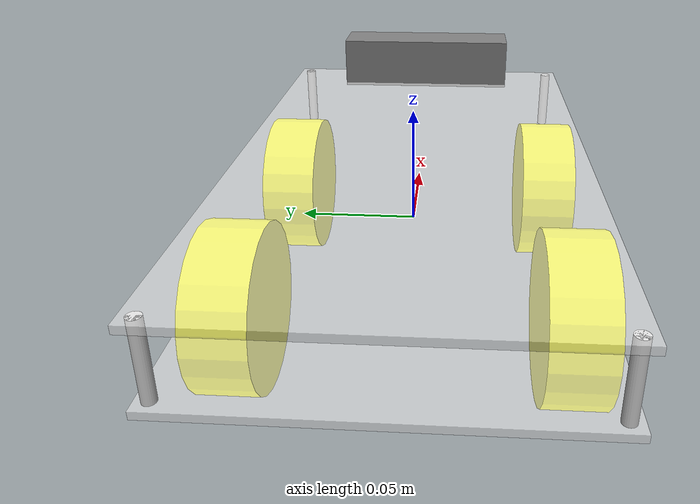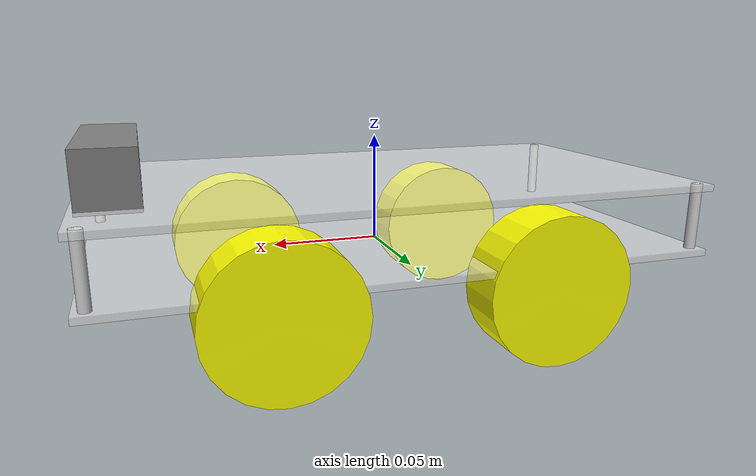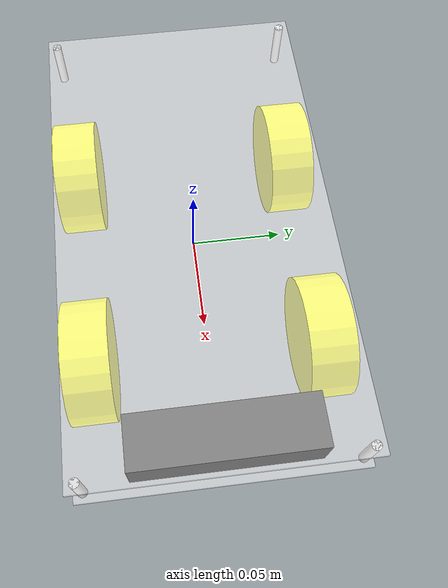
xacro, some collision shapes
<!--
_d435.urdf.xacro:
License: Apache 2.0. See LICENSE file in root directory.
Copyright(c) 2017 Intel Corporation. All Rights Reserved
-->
<?xml version="1.0"?>
<robot name="sp1s" xmlns:xacro="http://ros.org/wiki/xacro">
  <link name="base_link">
    <visual>
      <geometry>
        <box size="0.27 .15 .003"/>
      </geometry>
      <material name="white">
         <color rgba="1 1 1 .5"/>
    </material>
    </visual>
  </link>

  <link name="tyer_front_left">
    <visual>
      <geometry>
       <cylinder length=".025" radius="0.034"></cylinder>
      </geometry>
      <material name="yellow">
          <color rgba="1 1 0 1"/>
      </material>
    </visual>
  </link>

  <link name="tyer_front_right">
    <visual>
      <geometry>
       <cylinder length=".025" radius="0.034"></cylinder>
      </geometry>
      <material name="yellow">
          <color rgba="1 1 0 1"/>
      </material>
    </visual>
  </link>

  <link name="tyer_back_left">
    <visual>
      <geometry>
       <cylinder length=".025" radius="0.034"></cylinder>
      </geometry>
      <material name="yellow">
          <color rgba="1 1 0 1"/>
      </material>
    </visual>
  </link>

  <link name="tyer_back_right">
    <visual>
      <geometry>
       <cylinder length=".025" radius="0.034"></cylinder>
      </geometry>
      <material name="yellow">
          <color rgba="1 1 0 1"/>
      </material>
    </visual>
  </link>

  <joint name="base_to_front_left" type="continuous">
    <origin rpy="1.57075  0  0" xyz="0.06  0.064  -0.011"/>
    <parent link="base_link"/>
    <child link="tyer_front_left"/>
    <axis xyz="0 0 1"/>
  </joint>

  <joint name="base_to_front_right" type="continuous">
    <origin rpy="1.57075  0  0" xyz="0.06  -0.064  -0.011"/>
    <parent link="base_link"/>
    <child link="tyer_front_right"/>
    <axis xyz="0 0 1"/>
  </joint>

  <joint name="base_to_back_left" type="continuous">
    <origin rpy="1.57075  0  0" xyz="-0.06  0.064  -0.011"/>
    <parent link="base_link"/>
    <child link="tyer_back_left"/>
    <axis xyz="0 0 1"/>
  </joint>

  <joint name="base_to_back_right" type="continuous">
    <origin rpy="1.57075  0  0" xyz="-0.06  -0.064  -0.011"/>
    <parent link="base_link"/>
    <child link="tyer_back_right"/>
    <axis xyz="0 0 1"/>
  </joint>

  <link name="pillar_front_left">
    <visual>
      <geometry>
       <cylinder length=".03" radius="0.0025"></cylinder>
      </geometry>
      <origin xyz="0 0 0.015"/>
      <material name="silver">
          <color rgba=".86 .86 .86 1"/>
      </material>
    </visual>
  </link>

  <link name="pillar_front_right">
    <visual>
      <geometry>
       <cylinder length=".03" radius="0.0025"></cylinder>
      </geometry>
      <origin xyz="0 0 0.015"/>
      <material name="silver">
          <color rgba=".86 .86 .86 1"/>
      </material>
    </visual>
  </link>

  <link name="pillar_back_left">
    <visual>
      <geometry>
       <cylinder length=".03" radius="0.0025"></cylinder>
      </geometry>
      <origin xyz="0 0 0.015"/>
      <material name="silver">
          <color rgba=".86 .86 .86 1"/>
      </material>
    </visual>
  </link>

  <link name="pillar_back_right">
    <visual>
      <geometry>
       <cylinder length=".03" radius="0.0025"></cylinder>
      </geometry>
      <origin xyz="0 0 0.015"/>
      <material name="silver">
          <color rgba=".86 .86 .86 1"/>
      </material>
    </visual>
  </link>

  <joint name="base_to_pillar_front_left" type="fixed">
    <origin xyz="0.13  0.07  0.0015"/>
    <parent link="base_link"/>
    <child link="pillar_front_left"/>
  </joint>

  <joint name="base_to_pillar_front_right" type="fixed">
    <origin xyz="-0.13  0.07  0.0015"/>
    <parent link="base_link"/>
    <child link="pillar_front_right"/>
  </joint>

  <joint name="base_to_pillar_back_left" type="fixed">
    <origin xyz="0.13  -0.07  0.0015"/>
    <parent link="base_link"/>
    <child link="pillar_back_left"/>
  </joint>

  <joint name="base_to_pillar_back_right" type="fixed">
    <origin xyz="-0.13  -0.07  0.0015"/>
    <parent link="base_link"/>
    <child link="pillar_back_right"/>
  </joint>

  <link name="top_link">
    <visual>
      <geometry>
        <box size="0.27 .15 .003"/>
      </geometry>
      <material name="white">
         <color rgba="1 1 1 .5"/>
    </material>
    </visual>
  </link>

  <joint name="base_to_top" type="fixed">
    <origin xyz="0  0  0.03"/>
    <parent link="base_link"/>
    <child link="top_link"/>
  </joint>

  <xacro:include filename="$(find mower)/urdf/_d435.urdf.xacro"/>

  <sensor_d435 parent="top_link">
    <origin xyz ="0.12 0 0"/>
  </sensor_d435>

</robot>

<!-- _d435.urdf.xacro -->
<robot name="sensor_d435" xmlns:xacro="http://ros.org/wiki/xacro">
  <xacro:macro name="sensor_d435" params="parent *origin">
    <xacro:property name="M_PI" value="3.1415926535897931" />

    <!-- The following values are approximate, and the camera node
     publishing TF values with actual calibrated camera extrinsic values -->
    <xacro:property name="d435_cam_depth_to_left_ir_offset" value="0.0"/>
    <xacro:property name="d435_cam_depth_to_right_ir_offset" value="-0.050"/>
    <xacro:property name="d435_cam_depth_to_color_offset" value="0.015"/>

    <!-- The following values model the aluminum peripherial case for the
  	D435 camera, with the camera joint represented by the actual
  	peripherial camera tripod mount -->
    <xacro:property name="d435_cam_width" value="0.090"/>
    <xacro:property name="d435_cam_height" value="0.025"/>
    <xacro:property name="d435_cam_depth" value="0.02505"/>
    <xacro:property name="d435_cam_mount_from_center_offset" value="0.0149"/>

    <!-- The following offset is relative the the physical D435 camera peripherial
  	camera tripod mount -->
    <xacro:property name="d435_cam_depth_px" value="${d435_cam_mount_from_center_offset}"/>
    <xacro:property name="d435_cam_depth_py" value="0.0175"/>
    <xacro:property name="d435_cam_depth_pz" value="${d435_cam_height/2}"/>

    <material name="aluminum">
	  <color rgba="0.5 0.5 0.5 1"/>
    </material>

    <!-- camera body, with origin at bottom screw mount -->
    <joint name="camera_joint" type="fixed">
      <xacro:insert_block name="origin" />
      <parent link="${parent}"/>
      <child link="camera_link" />
      <!--origin xyz="0 0 0" rpy="0 0 0"/-->
    </joint>

    <link name="camera_link">
      <visual>
      <origin xyz="${d435_cam_mount_from_center_offset} 0.0 ${d435_cam_height/2}" rpy="${M_PI/2} 0 ${M_PI/2}"/>
        <geometry>
	  <mesh filename="package://realsense2_camera/meshes/d435.dae" />

        </geometry>
        <material name="aluminum"/>
      </visual>
      <collision>
        <origin xyz="0.0 0.0 ${d435_cam_height/2}" rpy="0 0 0"/>
        <geometry>
        <box size="${d435_cam_depth} ${d435_cam_width} ${d435_cam_height}"/>
        </geometry>
      </collision>
      <inertial>
        <!-- The following are not reliable values, and should not be used for modeling -->
        <mass value="0.564" />
        <origin xyz="0 0 0" />
        <inertia ixx="0.003881243" ixy="0.0" ixz="0.0" iyy="0.000498940" iyz="0.0" izz="0.003879257" />
      </inertial>
    </link>

    <!-- camera depth joints and links -->
    <joint name="camera_depth_joint" type="fixed">
      <origin xyz="${d435_cam_depth_px} ${d435_cam_depth_py} ${d435_cam_depth_pz}" rpy="0 0 0"/>
      <parent link="camera_link"/>
      <child link="camera_depth_frame" />
    </joint>
    <link name="camera_depth_frame"/>

    <joint name="camera_depth_optical_joint" type="fixed">
      <origin xyz="0 0 0" rpy="${-M_PI/2} 0 ${-M_PI/2}" />
      <parent link="camera_depth_frame" />
      <child link="camera_depth_optical_frame" />
    </joint>
    <link name="camera_depth_optical_frame"/>

    <!-- camera left IR joints and links -->
    <joint name="camera_left_ir_joint" type="fixed">
      <origin xyz="0 ${d435_cam_depth_to_left_ir_offset} 0" rpy="0 0 0" />
      <parent link="camera_depth_frame" />
      <child link="camera_left_ir_frame" />
    </joint>
    <link name="camera_left_ir_frame"/>

    <joint name="camera_left_ir_optical_joint" type="fixed">
      <origin xyz="0 0 0" rpy="${-M_PI/2} 0 ${-M_PI/2}" />
      <parent link="camera_left_ir_frame" />
      <child link="camera_left_ir_optical_frame" />
    </joint>
    <link name="camera_left_ir_optical_frame"/>

    <!-- camera right IR joints and links -->
    <joint name="camera_right_ir_joint" type="fixed">
      <origin xyz="0 ${d435_cam_depth_to_right_ir_offset} 0" rpy="0 0 0" />
      <parent link="camera_depth_frame" />
      <child link="camera_right_ir_frame" />
    </joint>
    <link name="camera_right_ir_frame"/>

    <joint name="camera_right_ir_optical_joint" type="fixed">
      <origin xyz="0 0 0" rpy="${-M_PI/2} 0 ${-M_PI/2}" />
      <parent link="camera_right_ir_frame" />
      <child link="camera_right_ir_optical_frame" />
    </joint>
    <link name="camera_right_ir_optical_frame"/>

    <!-- camera color joints and links -->
    <joint name="camera_color_joint" type="fixed">
      <origin xyz="0 ${d435_cam_depth_to_color_offset} 0" rpy="0 0 0" />
      <parent link="camera_depth_frame" />
      <child link="camera_color_frame" />
    </joint>
    <link name="camera_color_frame"/>

    <joint name="camera_color_optical_joint" type="fixed">
      <origin xyz="0 0 0" rpy="${-M_PI/2} 0 ${-M_PI/2}" />
      <parent link="camera_color_frame" />
      <child link="camera_color_optical_frame" />
    </joint>
    <link name="camera_color_optical_frame"/>
  </xacro:macro>
</robot>
